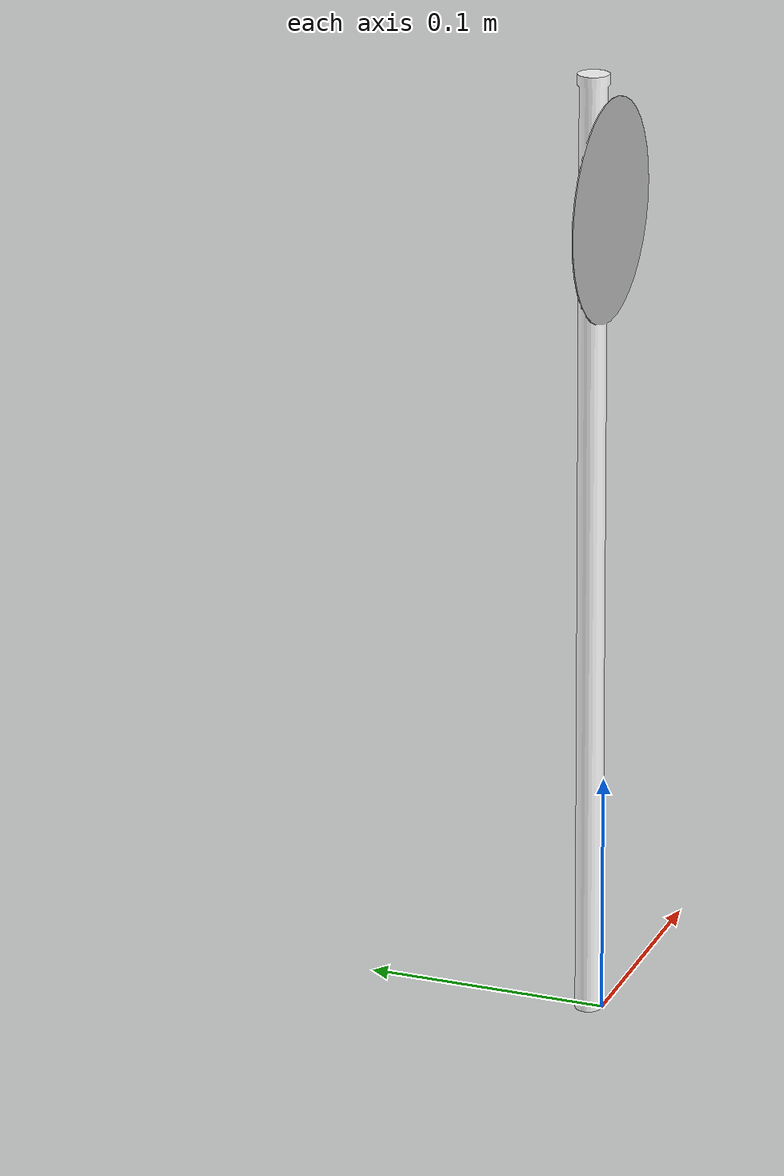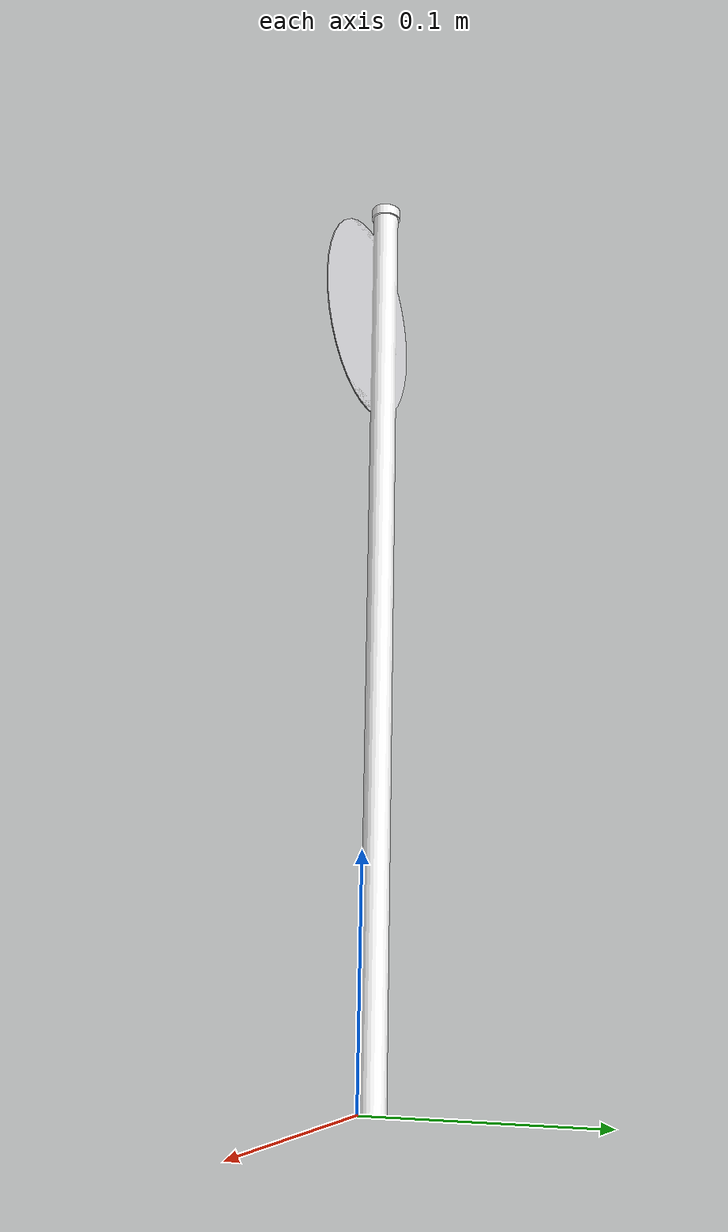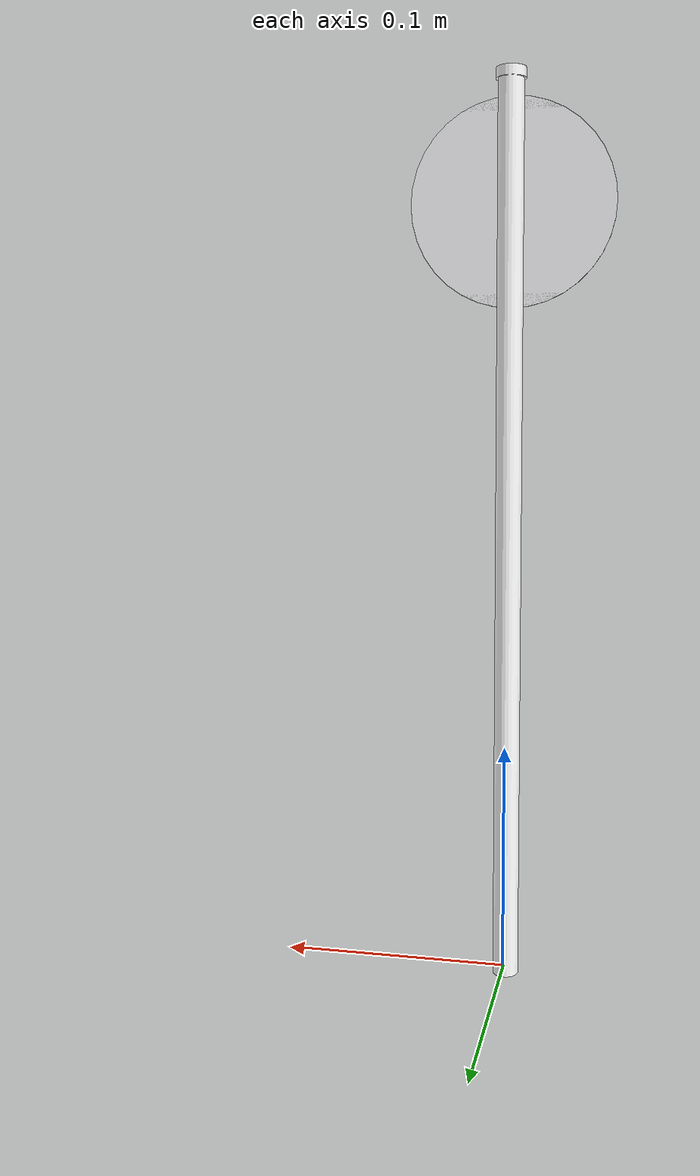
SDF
<?xml version='1.0'?>
<sdf version='1.7'>
  <model name='no_car_1'>
	<static>true</static>
    <link name='link_0'>

		<collision name="collision">
		<geometry>
			<mesh>
				<uri>model://no_car_1/mesh/model.dae</uri>
	            <scale>0.15 0.15 0.15</scale>
			</mesh>
		</geometry>
		</collision>

		<visual name="visual">
		<cast_shadows>true</cast_shadows>
		<geometry>
			<mesh>
				<uri>model://no_car_1/mesh/model.dae</uri>
	            <scale>0.15 0.15 0.15</scale>
			</mesh>
		</geometry>
		</visual>
    </link>
  </model>
</sdf>
